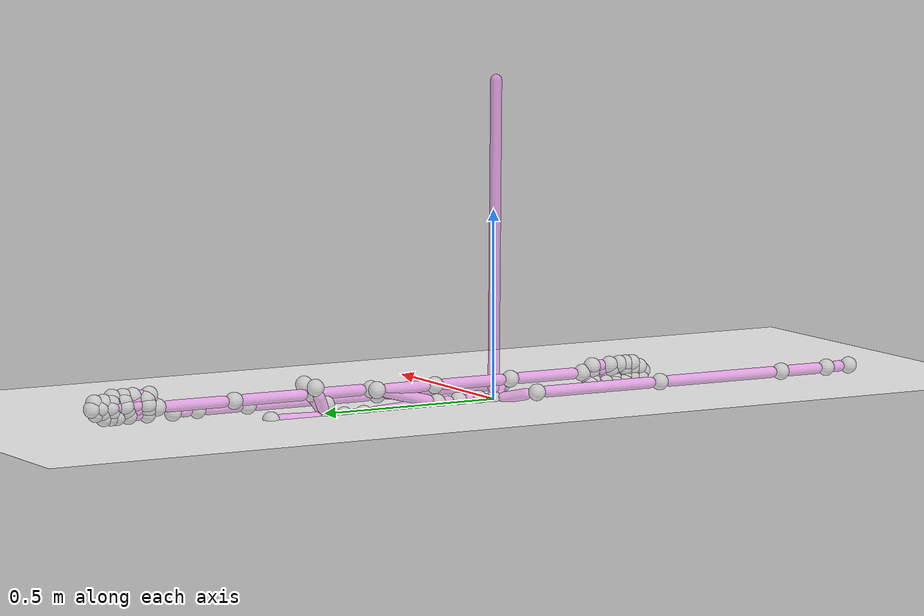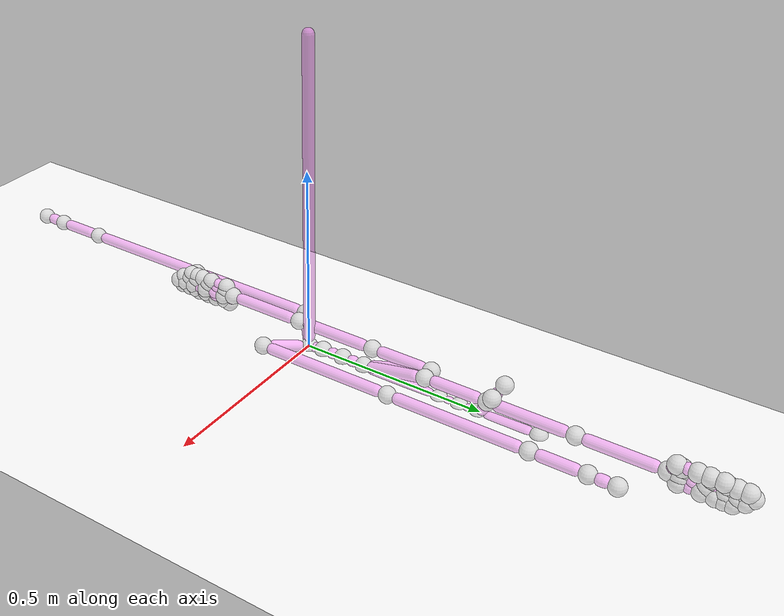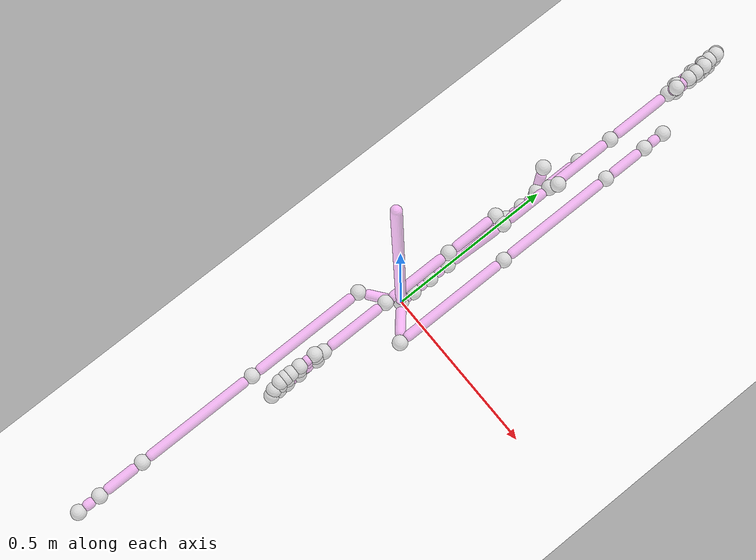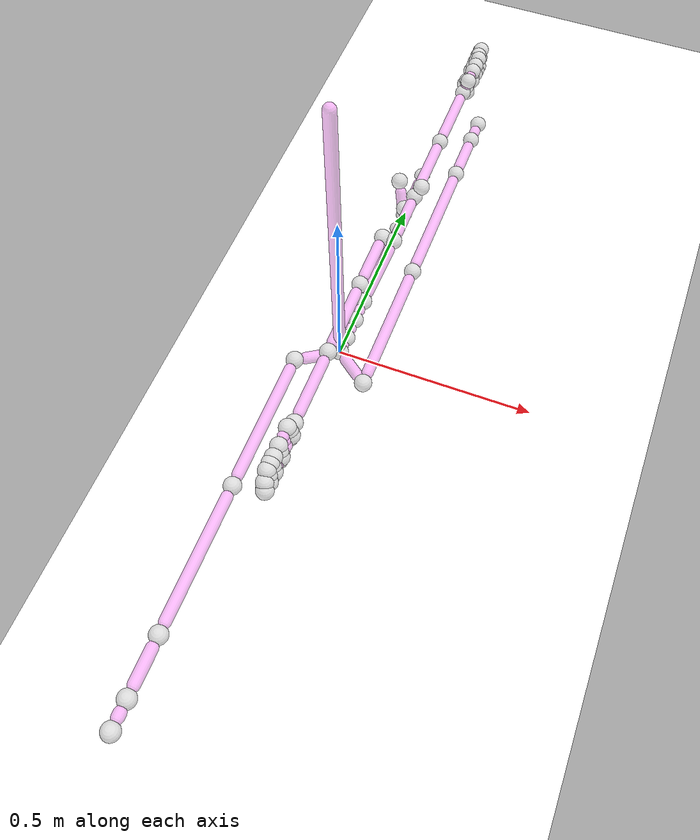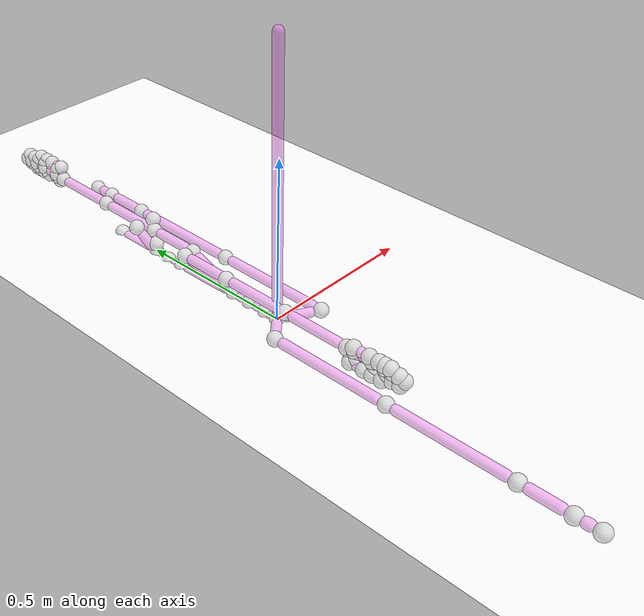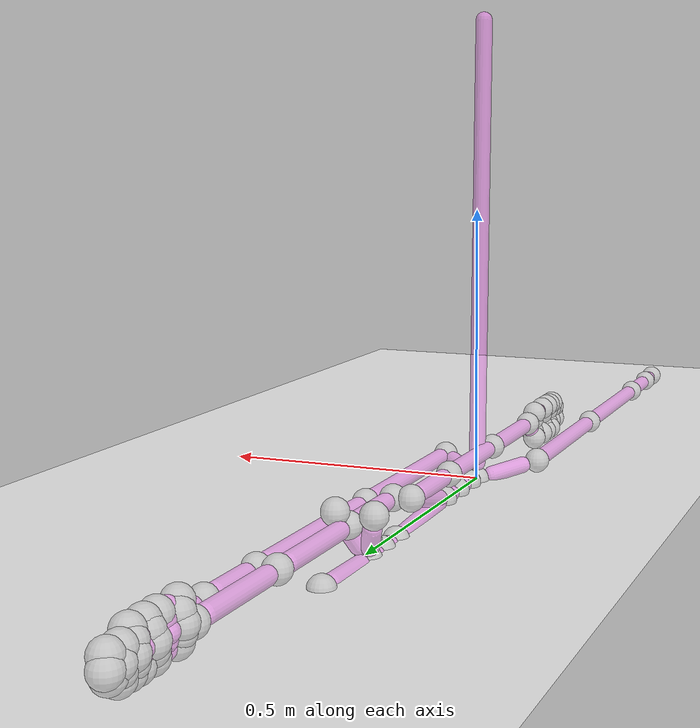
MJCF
<mujoco model="human_skeleton">
  <compiler angle="degree" coordinate="local"/>
  <option gravity="0 0 -9.81"/>
  <worldbody>
    <body name="Root" pos="0.000000 0.000000 0.000000">
      <joint type="ball" name="Root_joint"/>
      <geom type="sphere" size="0.0225" rgba="0.8 0.8 0.8 0.5"/>
      <geom type="capsule" size="0.015 0.4053841801929699" pos="-0.006304 -0.000614 0.435328"  quat="0.4999867697704854 0.0003526628811086165 -0.003620177256423024 0.0"  rgba="1.0 0.5 1.0 0.5"/>
      <body name="Hips" pos="0.000000 0.000000 0.000000">
        <joint name="floating_base_joint" type="free" limited="false" actuatorfrclimited="false"/>
        <geom type="sphere" size="0.0225" rgba="0.5 0.0 1.0 0.5"/>
        <geom type="capsule" size="0.015 1e-05" pos="0.000168 0.021950 0.002495"  quat="0.3729820767743832 -0.3329833474778381 0.0025417921869138357 0.0"  rgba="1.0 0.5 1.0 0.5"/>
        <body name="Spine1" pos="0.000335 0.043901 0.004990">
          <joint type="ball" name="Spine1_joint"/>
          <geom type="sphere" size="0.0225" rgba="0.8 0.8 0.8 0.5"/>
          <geom type="capsule" size="0.015 0.0003380950000000005" pos="0.000000 0.030328 -0.000000"  quat="0.3535533905932738 -0.35355339059327373 0.0 0.0"  rgba="1.0 0.5 1.0 0.5"/>
          <body name="Spine2" pos="0.000000 0.060656 -0.000000">
            <joint type="ball" name="Spine2_joint"/>
            <geom type="sphere" size="0.0225" rgba="0.8 0.8 0.8 0.5"/>
            <geom type="capsule" size="0.015 0.0018459450000015668" pos="0.000000 0.031836 0.000000"  quat="0.35355344612066 -0.3535533350658788 0.0 0.0"  rgba="1.0 0.5 1.0 0.5"/>
            <body name="Chest" pos="0.000000 0.063672 0.000000">
              <joint type="ball" name="Chest_joint"/>
              <geom type="sphere" size="0.0225" rgba="0.8 0.8 0.8 0.5"/>
              <geom type="capsule" size="0.015 0.0793071826628882" pos="-0.001166 0.109105 -0.006380"  quat="0.3430792537645486 -0.3637052672266247 -0.0038864158256608594 0.0"  rgba="1.0 0.5 1.0 0.5"/>
              <body name="Neck1" pos="-0.002332 0.218209 -0.012760">
                <joint type="ball" name="Neck1_joint"/>
                <geom type="sphere" size="0.0225" rgba="0.8 0.8 0.8 0.5"/>
                <geom type="capsule" size="0.015 1e-05" pos="0.000000 0.028113 -0.000000"  quat="0.35355335915255987 -0.3535534220339849 0.0 0.0"  rgba="1.0 0.5 1.0 0.5"/>
                <body name="Neck2" pos="0.000000 0.056225 -0.000000">
                  <joint type="ball" name="Neck2_joint"/>
                  <geom type="sphere" size="0.0225" rgba="0.8 0.8 0.8 0.5"/>
                  <geom type="capsule" size="0.015 1e-05" pos="0.000000 0.025986 -0.000000"  quat="0.3535532885506984 -0.3535534926358197 0.0 0.0"  rgba="1.0 0.5 1.0 0.5"/>
                  <body name="Head" pos="0.000000 0.051971 -0.000000">
                    <joint type="ball" name="Head_joint"/>
                    <geom type="sphere" size="0.0225" rgba="0.8 0.8 0.8 0.5"/>
                    <geom type="capsule" size="0.015 0.050270042127394575" pos="0.000039 0.080239 0.001823"  quat="0.357546212727924 -0.3495149156112949 0.00017184047125104278 0.0"  rgba="1.0 0.5 1.0 0.5"/>
                    <body name="HeadEnd" pos="0.000079 0.160479 0.003646">
                      <joint type="ball" name="HeadEnd_joint"/>
                      <geom type="sphere" size="0.0225" rgba="0.8 0.8 0.8 0.5"/>
                    </body>
                    <geom type="capsule" size="0.015 1e-05" pos="0.000035 0.000640 0.016273"  quat="0.49990304412940484 -0.00983181370612237 0.0005309514124868608 0.0"  rgba="1.0 0.5 1.0 0.5"/>
                    <body name="Jaw" pos="0.000069 0.001281 0.032545">
                      <joint type="ball" name="Jaw_joint"/>
                      <geom type="sphere" size="0.0225" rgba="0.8 0.8 0.8 0.5"/>
                    </body>
                    <geom type="capsule" size="0.015 0.021029722365282676" pos="0.015841 0.024296 0.041973"  quat="0.47732210931389063 -0.1247085992202639 0.0813103267774633 0.0"  rgba="1.0 0.5 1.0 0.5"/>
                    <body name="LeftEye" pos="0.031682 0.048592 0.083947">
                      <joint type="ball" name="LeftEye_joint"/>
                      <geom type="sphere" size="0.0225" rgba="0.8 0.8 0.8 0.5"/>
                    </body>
                    <geom type="capsule" size="0.015 0.021073140842283188" pos="-0.016152 0.024345 0.041879"  quat="0.47698921725157456 -0.12493876096904874 -0.08289507001775874 0.0"  rgba="1.0 0.5 1.0 0.5"/>
                    <body name="RightEye" pos="-0.032305 0.048689 0.083759">
                      <joint type="ball" name="RightEye_joint"/>
                      <geom type="sphere" size="0.0225" rgba="0.8 0.8 0.8 0.5"/>
                    </body>
                  </body>
                </body>
              </body>
              <geom type="capsule" size="0.015 0.066512417880271" pos="0.008189 0.093277 0.023348"  quat="0.3940082322367559 -0.30664757340715293 0.026921713414480637 0.0"  rgba="1.0 0.5 1.0 0.5"/>
              <body name="LeftShoulder" pos="0.016378 0.186553 0.046696">
                <joint type="ball" name="LeftShoulder_joint"/>
                <geom type="sphere" size="0.0225" rgba="0.8 0.8 0.8 0.5"/>
                <geom type="capsule" size="0.015 0.055020145000034416" pos="-0.000000 0.085010 -0.000000"  quat="0.3535533594011078 -0.35355342178529936 -3.11921672806198e-07 0.0"  rgba="1.0 0.5 1.0 0.5"/>
                <body name="LeftArm" pos="-0.000000 0.170020 -0.000000">
                  <joint type="ball" name="LeftArm_joint"/>
                  <geom type="sphere" size="0.0225" rgba="0.8 0.8 0.8 0.5"/>
                  <geom type="capsule" size="0.015 0.08304618500000188" pos="0.000000 0.113036 0.000000"  quat="0.35355339841274736 -0.35355338277379444 6.25557882679417e-08 0.0"  rgba="1.0 0.5 1.0 0.5"/>
                  <body name="LeftForeArm" pos="0.000000 0.226072 0.000000">
                    <joint type="ball" name="LeftForeArm_joint"/>
                    <geom type="sphere" size="0.0225" rgba="0.8 0.8 0.8 0.5"/>
                    <geom type="capsule" size="0.015 0.07912377000000011" pos="0.000000 0.109114 0.000000"  quat="0.35355339869384134 -0.353553382492706 0.0 0.0"  rgba="1.0 0.5 1.0 0.5"/>
                    <body name="LeftHand" pos="0.000000 0.218228 0.000000">
                      <joint type="ball" name="LeftHand_joint"/>
                      <geom type="sphere" size="0.0225" rgba="0.8 0.8 0.8 0.5"/>
                      <geom type="capsule" size="0.015 1e-05" pos="0.004033 0.009661 0.016027"  quat="0.4792212540129924 -0.13163204160848127 0.05495448411365577 0.0"  rgba="1.0 0.5 1.0 0.5"/>
                      <body name="LeftHandThumb1" pos="0.008066 0.019321 0.032055">
                        <joint type="ball" name="LeftHandThumb1_joint"/>
                        <geom type="sphere" size="0.0225" rgba="0.8 0.8 0.8 0.5"/>
                        <geom type="capsule" size="0.015 1e-05" pos="0.000000 0.023169 0.000000"  quat="0.3535533905932738 -0.35355339059319973 2.2889734577003085e-07 0.0"  rgba="1.0 0.5 1.0 0.5"/>
                        <body name="LeftHandThumb2" pos="0.000000 0.046338 0.000000">
                          <joint type="ball" name="LeftHandThumb2_joint"/>
                          <geom type="sphere" size="0.0225" rgba="0.8 0.8 0.8 0.5"/>
                          <geom type="capsule" size="0.015 1e-05" pos="0.000000 0.013484 0.000000"  quat="0.35355365279008494 -0.3535531283958793 5.243934278917277e-07 0.0"  rgba="1.0 0.5 1.0 0.5"/>
                          <body name="LeftHandThumb3" pos="0.000000 0.026969 0.000000">
                            <joint type="ball" name="LeftHandThumb3_joint"/>
                            <geom type="sphere" size="0.0225" rgba="0.8 0.8 0.8 0.5"/>
                            <geom type="capsule" size="0.015 1e-05" pos="0.000000 0.015523 -0.000000"  quat="0.3535529350620424 -0.3535538461239182 0.0 0.0"  rgba="1.0 0.5 1.0 0.5"/>
                            <body name="LeftHandThumbEnd" pos="0.000000 0.031045 -0.000000">
                              <joint type="ball" name="LeftHandThumbEnd_joint"/>
                              <geom type="sphere" size="0.0225" rgba="0.8 0.8 0.8 0.5"/>
                            </body>
                          </body>
                        </body>
                      </body>
                      <geom type="capsule" size="0.015 1e-05" pos="0.000498 0.014946 0.011280"  quat="0.447521830247635 -0.22286547055889092 0.007429231748377347 0.0"  rgba="1.0 0.5 1.0 0.5"/>
                      <body name="LeftHandIndex1" pos="0.000996 0.029892 0.022560">
                        <joint type="ball" name="LeftHandIndex1_joint"/>
                        <geom type="sphere" size="0.0225" rgba="0.8 0.8 0.8 0.5"/>
                        <geom type="capsule" size="0.015 0.0022948150000263287" pos="-0.000000 0.032285 0.000000"  quat="0.35355344534863836 -0.3535533358376293 -4.380428828074491e-07 0.0"  rgba="1.0 0.5 1.0 0.5"/>
                        <body name="LeftHandIndex2" pos="-0.000000 0.064570 0.000000">
                          <joint type="ball" name="LeftHandIndex2_joint"/>
                          <geom type="sphere" size="0.0225" rgba="0.8 0.8 0.8 0.5"/>
                          <geom type="capsule" size="0.015 1e-05" pos="0.000000 0.017473 -0.000000"  quat="0.3535532894240832 -0.35355349176243545 0.0 0.0"  rgba="1.0 0.5 1.0 0.5"/>
                          <body name="LeftHandIndex3" pos="0.000000 0.034947 -0.000000">
                            <joint type="ball" name="LeftHandIndex3_joint"/>
                            <geom type="sphere" size="0.0225" rgba="0.8 0.8 0.8 0.5"/>
                            <geom type="capsule" size="0.015 1e-05" pos="-0.000000 0.010751 0.000000"  quat="0.35355371946347575 -0.353553061722154 -6.57740098120009e-07 0.0"  rgba="1.0 0.5 1.0 0.5"/>
                            <body name="LeftHandIndex4" pos="-0.000000 0.021501 0.000000">
                              <joint type="ball" name="LeftHandIndex4_joint"/>
                              <geom type="sphere" size="0.0225" rgba="0.8 0.8 0.8 0.5"/>
                              <geom type="capsule" size="0.015 1e-05" pos="0.000000 0.012791 -0.000000"  quat="0.35355332149098595 -0.3535534596955481 0.0 0.0"  rgba="1.0 0.5 1.0 0.5"/>
                              <body name="LeftHandIndexEnd" pos="0.000000 0.025582 -0.000000">
                                <joint type="ball" name="LeftHandIndexEnd_joint"/>
                                <geom type="sphere" size="0.0225" rgba="0.8 0.8 0.8 0.5"/>
                              </body>
                            </body>
                          </body>
                        </body>
                      </body>
                      <geom type="capsule" size="0.015 1e-05" pos="-0.002087 0.014694 0.004382"  quat="0.40049882843327994 -0.29635804926747183 -0.04210219778050777 0.0"  rgba="1.0 0.5 1.0 0.5"/>
                      <body name="LeftHandMiddle1" pos="-0.004175 0.029387 0.008765">
                        <joint type="ball" name="LeftHandMiddle1_joint"/>
                        <geom type="sphere" size="0.0225" rgba="0.8 0.8 0.8 0.5"/>
                        <geom type="capsule" size="0.015 0.001325670000025554" pos="-0.000000 0.031316 0.000000"  quat="0.3535533905932738 -0.3535533905929853 -4.5159933106075683e-07 0.0"  rgba="1.0 0.5 1.0 0.5"/>
                        <body name="LeftHandMiddle2" pos="-0.000000 0.062631 0.000000">
                          <joint type="ball" name="LeftHandMiddle2_joint"/>
                          <geom type="sphere" size="0.0225" rgba="0.8 0.8 0.8 0.5"/>
                          <geom type="capsule" size="0.015 1e-05" pos="-0.000000 0.020911 -0.000000"  quat="0.35355334832515006 -0.3535534328612307 -3.3814501011291065e-07 0.0"  rgba="1.0 0.5 1.0 0.5"/>
                          <body name="LeftHandMiddle3" pos="-0.000000 0.041823 -0.000000">
                            <joint type="ball" name="LeftHandMiddle3_joint"/>
                            <geom type="sphere" size="0.0225" rgba="0.8 0.8 0.8 0.5"/>
                            <geom type="capsule" size="0.015 1e-05" pos="0.000000 0.014242 -0.000000"  quat="0.35355326647027024 -0.3535535147162337 0.0 0.0"  rgba="1.0 0.5 1.0 0.5"/>
                            <body name="LeftHandMiddle4" pos="0.000000 0.028484 -0.000000">
                              <joint type="ball" name="LeftHandMiddle4_joint"/>
                              <geom type="sphere" size="0.0225" rgba="0.8 0.8 0.8 0.5"/>
                              <geom type="capsule" size="0.015 1e-05" pos="0.000000 0.011370 0.000000"  quat="0.35355354606638284 -0.3535532351195494 6.21892299757172e-07 0.0"  rgba="1.0 0.5 1.0 0.5"/>
                              <body name="LeftHandMiddleEnd" pos="0.000000 0.022740 0.000000">
                                <joint type="ball" name="LeftHandMiddleEnd_joint"/>
                                <geom type="sphere" size="0.0225" rgba="0.8 0.8 0.8 0.5"/>
                              </body>
                            </body>
                          </body>
                        </body>
                      </body>
                      <geom type="capsule" size="0.015 1e-05" pos="0.000672 0.013218 -0.001976"  quat="0.32640152360252656 -0.37827548773385566 0.0192276043661949 0.0"  rgba="1.0 0.5 1.0 0.5"/>
                      <body name="LeftHandRing1" pos="0.001344 0.026435 -0.003953">
                        <joint type="ball" name="LeftHandRing1_joint"/>
                        <geom type="sphere" size="0.0225" rgba="0.8 0.8 0.8 0.5"/>
                        <geom type="capsule" size="0.015 1e-05" pos="0.000000 0.029870 0.000000"  quat="0.3535534497743581 -0.35355333141217954 0.0 0.0"  rgba="1.0 0.5 1.0 0.5"/>
                        <body name="LeftHandRing2" pos="0.000000 0.059741 0.000000">
                          <joint type="ball" name="LeftHandRing2_joint"/>
                          <geom type="sphere" size="0.0225" rgba="0.8 0.8 0.8 0.5"/>
                          <geom type="capsule" size="0.015 1e-05" pos="0.000000 0.020779 0.000000"  quat="0.3535533905932738 -0.35355339059327373 0.0 0.0"  rgba="1.0 0.5 1.0 0.5"/>
                          <body name="LeftHandRing3" pos="0.000000 0.041559 0.000000">
                            <joint type="ball" name="LeftHandRing3_joint"/>
                            <geom type="sphere" size="0.0225" rgba="0.8 0.8 0.8 0.5"/>
                            <geom type="capsule" size="0.015 1e-05" pos="-0.000000 0.012537 0.000000"  quat="0.3535533905932738 -0.3535533905914741 -1.1280678671776212e-06 0.0"  rgba="1.0 0.5 1.0 0.5"/>
                            <body name="LeftHandRing4" pos="-0.000000 0.025073 0.000000">
                              <joint type="ball" name="LeftHandRing4_joint"/>
                              <geom type="sphere" size="0.0225" rgba="0.8 0.8 0.8 0.5"/>
                              <geom type="capsule" size="0.015 1e-05" pos="-0.000000 0.009328 -0.000000"  quat="0.35355310633994474 -0.3535536748455617 -7.580091823010003e-07 0.0"  rgba="1.0 0.5 1.0 0.5"/>
                              <body name="LeftHandRingEnd" pos="-0.000000 0.018657 -0.000000">
                                <joint type="ball" name="LeftHandRingEnd_joint"/>
                                <geom type="sphere" size="0.0225" rgba="0.8 0.8 0.8 0.5"/>
                              </body>
                            </body>
                          </body>
                        </body>
                      </body>
                      <geom type="capsule" size="0.015 1e-05" pos="0.002860 0.013000 -0.008327"  quat="0.2422967331319915 -0.42715588923006975 0.09396882147623681 0.0"  rgba="1.0 0.5 1.0 0.5"/>
                      <body name="LeftHandPinky1" pos="0.005720 0.026000 -0.016653">
                        <joint type="ball" name="LeftHandPinky1_joint"/>
                        <geom type="sphere" size="0.0225" rgba="0.8 0.8 0.8 0.5"/>
                        <geom type="capsule" size="0.015 1e-05" pos="-0.000000 0.026343 -0.000000"  quat="0.3535533570404956 -0.3535534241456411 -5.368444755064953e-07 0.0"  rgba="1.0 0.5 1.0 0.5"/>
                        <body name="LeftHandPinky2" pos="-0.000000 0.052686 -0.000000">
                          <joint type="ball" name="LeftHandPinky2_joint"/>
                          <geom type="sphere" size="0.0225" rgba="0.8 0.8 0.8 0.5"/>
                          <geom type="capsule" size="0.015 1e-05" pos="-0.000000 0.015569 0.000000"  quat="0.35355344736389704 -0.35355333382043536 -1.2489536102352146e-06 0.0"  rgba="1.0 0.5 1.0 0.5"/>
                          <body name="LeftHandPinky3" pos="-0.000000 0.031139 0.000000">
                            <joint type="ball" name="LeftHandPinky3_joint"/>
                            <geom type="sphere" size="0.0225" rgba="0.8 0.8 0.8 0.5"/>
                            <geom type="capsule" size="0.015 1e-05" pos="-0.000000 0.008761 0.000000"  quat="0.3535533905932738 -0.3535533905895886 -1.6142525448413696e-06 0.0"  rgba="1.0 0.5 1.0 0.5"/>
                            <body name="LeftHandPinky4" pos="-0.000000 0.017522 0.000000">
                              <joint type="ball" name="LeftHandPinky4_joint"/>
                              <geom type="sphere" size="0.0225" rgba="0.8 0.8 0.8 0.5"/>
                              <geom type="capsule" size="0.015 1e-05" pos="-0.000000 0.009813 -0.000000"  quat="0.3535532104535041 -0.3535535707322174 -7.205592623329282e-07 0.0"  rgba="1.0 0.5 1.0 0.5"/>
                              <body name="LeftHandPinkyEnd" pos="-0.000000 0.019627 -0.000000">
                                <joint type="ball" name="LeftHandPinkyEnd_joint"/>
                                <geom type="sphere" size="0.0225" rgba="0.8 0.8 0.8 0.5"/>
                              </body>
                            </body>
                          </body>
                        </body>
                      </body>
                    </body>
                  </body>
                </body>
              </body>
              <geom type="capsule" size="0.015 0.06638667410424852" pos="-0.007756 0.092962 0.024216"  quat="0.3954841052590697 -0.30486935986931285 -0.025436114096074373 0.0"  rgba="1.0 0.5 1.0 0.5"/>
              <body name="RightShoulder" pos="-0.015512 0.185924 0.048431">
                <joint type="ball" name="RightShoulder_joint"/>
                <geom type="sphere" size="0.0225" rgba="0.8 0.8 0.8 0.5"/>
                <geom type="capsule" size="0.015 0.05536481500001187" pos="0.000000 -0.085355 0.000000"  quat="0.3535533905932738 0.3535533905932246 1.863972474979309e-07 0.0"  rgba="1.0 0.5 1.0 0.5"/>
                <body name="RightArm" pos="0.000000 -0.170710 0.000000">
                  <joint type="ball" name="RightArm_joint"/>
                  <geom type="sphere" size="0.0225" rgba="0.8 0.8 0.8 0.5"/>
                  <geom type="capsule" size="0.015 0.08313769000000222" pos="-0.000000 -0.113128 0.000000"  quat="0.3535534218458677 0.3535533593406758 -3.125259247675577e-08 0.0"  rgba="1.0 0.5 1.0 0.5"/>
                  <body name="RightForeArm" pos="-0.000000 -0.226255 0.000000">
                    <joint type="ball" name="RightForeArm_joint"/>
                    <geom type="sphere" size="0.0225" rgba="0.8 0.8 0.8 0.5"/>
                    <geom type="capsule" size="0.015 0.07915896000000229" pos="-0.000000 -0.109149 -0.000000"  quat="0.35355335820144823 0.35355342298509485 -3.239182700275796e-08 0.0"  rgba="1.0 0.5 1.0 0.5"/>
                    <body name="RightHand" pos="-0.000000 -0.218298 -0.000000">
                      <joint type="ball" name="RightHand_joint"/>
                      <geom type="sphere" size="0.0225" rgba="0.8 0.8 0.8 0.5"/>
                      <geom type="capsule" size="0.015 1e-05" pos="-0.004034 -0.009659 -0.016029"  quat="0.14261911499032742 0.4422120754808002 -0.18468423955047925 0.0"  rgba="1.0 0.5 1.0 0.5"/>
                      <body name="RightHandThumb1" pos="-0.008068 -0.019318 -0.032058">
                        <joint type="ball" name="RightHandThumb1_joint"/>
                        <geom type="sphere" size="0.0225" rgba="0.8 0.8 0.8 0.5"/>
                        <geom type="capsule" size="0.015 1e-05" pos="0.000000 -0.023170 -0.000000"  quat="0.35355323800502086 0.35355354318116444 4.577648573746462e-07 0.0"  rgba="1.0 0.5 1.0 0.5"/>
                        <body name="RightHandThumb2" pos="0.000000 -0.046341 -0.000000">
                          <joint type="ball" name="RightHandThumb2_joint"/>
                          <geom type="sphere" size="0.0225" rgba="0.8 0.8 0.8 0.5"/>
                          <geom type="capsule" size="0.015 1e-05" pos="0.000000 -0.013484 -0.000000"  quat="0.3535528661918735 0.35355391499302125 7.866026838150783e-07 0.0"  rgba="1.0 0.5 1.0 0.5"/>
                          <body name="RightHandThumb3" pos="0.000000 -0.026968 -0.000000">
                            <joint type="ball" name="RightHandThumb3_joint"/>
                            <geom type="sphere" size="0.0225" rgba="0.8 0.8 0.8 0.5"/>
                            <geom type="capsule" size="0.015 1e-05" pos="-0.000000 -0.015525 -0.000000"  quat="0.3535531628659484 0.3535536183202874 -3.4159109806601567e-07 0.0"  rgba="1.0 0.5 1.0 0.5"/>
                            <body name="RightHandThumbEnd" pos="-0.000000 -0.031051 -0.000000">
                              <joint type="ball" name="RightHandThumbEnd_joint"/>
                              <geom type="sphere" size="0.0225" rgba="0.8 0.8 0.8 0.5"/>
                            </body>
                          </body>
                        </body>
                      </body>
                      <geom type="capsule" size="0.015 1e-05" pos="-0.000501 -0.014948 -0.011279"  quat="0.22302010348650242 0.4472554175889212 -0.014987490724918033 0.0"  rgba="1.0 0.5 1.0 0.5"/>
                      <body name="RightHandIndex1" pos="-0.001002 -0.029896 -0.022557">
                        <joint type="ball" name="RightHandIndex1_joint"/>
                        <geom type="sphere" size="0.0225" rgba="0.8 0.8 0.8 0.5"/>
                        <geom type="capsule" size="0.015 0.0022937050000034873" pos="0.000000 -0.032284 -0.000000"  quat="0.353553308457387 0.35355347272914145 0.0 0.0"  rgba="1.0 0.5 1.0 0.5"/>
                        <body name="RightHandIndex2" pos="0.000000 -0.064567 -0.000000">
                          <joint type="ball" name="RightHandIndex2_joint"/>
                          <geom type="sphere" size="0.0225" rgba="0.8 0.8 0.8 0.5"/>
                          <geom type="capsule" size="0.015 1e-05" pos="0.000000 -0.017469 0.000000"  quat="0.3535534411895131 0.35355333999702726 0.0 0.0"  rgba="1.0 0.5 1.0 0.5"/>
                          <body name="RightHandIndex3" pos="0.000000 -0.034939 0.000000">
                            <joint type="ball" name="RightHandIndex3_joint"/>
                            <geom type="sphere" size="0.0225" rgba="0.8 0.8 0.8 0.5"/>
                            <geom type="capsule" size="0.015 1e-05" pos="0.000000 -0.010748 -0.000000"  quat="0.3535533905932738 0.35355339059327373 0.0 0.0"  rgba="1.0 0.5 1.0 0.5"/>
                            <body name="RightHandIndex4" pos="0.000000 -0.021495 -0.000000">
                              <joint type="ball" name="RightHandIndex4_joint"/>
                              <geom type="sphere" size="0.0225" rgba="0.8 0.8 0.8 0.5"/>
                              <geom type="capsule" size="0.015 1e-05" pos="0.000000 -0.012791 0.000000"  quat="0.35355359790435126 0.3535531832816426 5.528293777682541e-07 0.0"  rgba="1.0 0.5 1.0 0.5"/>
                              <body name="RightHandIndexEnd" pos="0.000000 -0.025581 0.000000">
                                <joint type="ball" name="RightHandIndexEnd_joint"/>
                                <geom type="sphere" size="0.0225" rgba="0.8 0.8 0.8 0.5"/>
                              </body>
                            </body>
                          </body>
                        </body>
                      </body>
                      <geom type="capsule" size="0.015 1e-05" pos="0.002088 -0.014694 -0.004382"  quat="0.2993451479159816 0.3965057507121433 0.05635310170131536 0.0"  rgba="1.0 0.5 1.0 0.5"/>
                      <body name="RightHandMiddle1" pos="0.004177 -0.029388 -0.008763">
                        <joint type="ball" name="RightHandMiddle1_joint"/>
                        <geom type="sphere" size="0.0225" rgba="0.8 0.8 0.8 0.5"/>
                        <geom type="capsule" size="0.015 0.0013275600000015983" pos="0.000000 -0.031318 -0.000000"  quat="0.3535533341467596 0.3535534470397789 0.0 0.0"  rgba="1.0 0.5 1.0 0.5"/>
                        <body name="RightHandMiddle2" pos="0.000000 -0.062635 -0.000000">
                          <joint type="ball" name="RightHandMiddle2_joint"/>
                          <geom type="sphere" size="0.0225" rgba="0.8 0.8 0.8 0.5"/>
                          <geom type="capsule" size="0.015 1e-05" pos="-0.000000 -0.020905 0.000000"  quat="0.3535534328736956 0.3535533483126851 -3.38243354784247e-07 0.0"  rgba="1.0 0.5 1.0 0.5"/>
                          <body name="RightHandMiddle3" pos="-0.000000 -0.041811 0.000000">
                            <joint type="ball" name="RightHandMiddle3_joint"/>
                            <geom type="sphere" size="0.0225" rgba="0.8 0.8 0.8 0.5"/>
                            <geom type="capsule" size="0.015 1e-05" pos="-0.000000 -0.014237 0.000000"  quat="0.35355345267771054 0.3535533285084772 -4.966754504907562e-07 0.0"  rgba="1.0 0.5 1.0 0.5"/>
                            <body name="RightHandMiddle4" pos="-0.000000 -0.028474 0.000000">
                              <joint type="ball" name="RightHandMiddle4_joint"/>
                              <geom type="sphere" size="0.0225" rgba="0.8 0.8 0.8 0.5"/>
                              <geom type="capsule" size="0.015 1e-05" pos="0.000000 -0.011372 -0.000000"  quat="0.35355331287050157 0.3535534683154822 6.217822461243098e-07 0.0"  rgba="1.0 0.5 1.0 0.5"/>
                              <body name="RightHandMiddleEnd" pos="0.000000 -0.022745 -0.000000">
                                <joint type="ball" name="RightHandMiddleEnd_joint"/>
                                <geom type="sphere" size="0.0225" rgba="0.8 0.8 0.8 0.5"/>
                              </body>
                            </body>
                          </body>
                        </body>
                      </body>
                      <geom type="capsule" size="0.015 1e-05" pos="-0.000669 -0.013217 0.001976"  quat="0.37876394038126493 0.3259840028286829 -0.016501738291672 0.0"  rgba="1.0 0.5 1.0 0.5"/>
                      <body name="RightHandRing1" pos="-0.001338 -0.026434 0.003953">
                        <joint type="ball" name="RightHandRing1_joint"/>
                        <geom type="sphere" size="0.0225" rgba="0.8 0.8 0.8 0.5"/>
                        <geom type="capsule" size="0.015 1e-05" pos="-0.000000 -0.029872 -0.000000"  quat="0.35355330182515016 0.35355347936129583 -2.36715025907534e-07 0.0"  rgba="1.0 0.5 1.0 0.5"/>
                        <body name="RightHandRing2" pos="-0.000000 -0.059743 -0.000000">
                          <joint type="ball" name="RightHandRing2_joint"/>
                          <geom type="sphere" size="0.0225" rgba="0.8 0.8 0.8 0.5"/>
                          <geom type="capsule" size="0.015 1e-05" pos="-0.000000 -0.020775 0.000000"  quat="0.3535534331384267 0.3535533480479519 -3.403612030871945e-07 0.0"  rgba="1.0 0.5 1.0 0.5"/>
                          <body name="RightHandRing3" pos="-0.000000 -0.041550 0.000000">
                            <joint type="ball" name="RightHandRing3_joint"/>
                            <geom type="sphere" size="0.0225" rgba="0.8 0.8 0.8 0.5"/>
                            <geom type="capsule" size="0.015 1e-05" pos="-0.000000 -0.012531 0.000000"  quat="0.3535534611263707 0.3535533200597125 -5.642647192383854e-07 0.0"  rgba="1.0 0.5 1.0 0.5"/>
                            <body name="RightHandRing4" pos="-0.000000 -0.025063 0.000000">
                              <joint type="ball" name="RightHandRing4_joint"/>
                              <geom type="sphere" size="0.0225" rgba="0.8 0.8 0.8 0.5"/>
                              <geom type="capsule" size="0.015 1e-05" pos="-0.000000 -0.009332 0.000000"  quat="0.35355348531316033 0.3535532958725498 -7.577589915342034e-07 0.0"  rgba="1.0 0.5 1.0 0.5"/>
                              <body name="RightHandRingEnd" pos="-0.000000 -0.018663 0.000000">
                                <joint type="ball" name="RightHandRingEnd_joint"/>
                                <geom type="sphere" size="0.0225" rgba="0.8 0.8 0.8 0.5"/>
                              </body>
                            </body>
                          </body>
                        </body>
                      </body>
                      <geom type="capsule" size="0.015 1e-05" pos="-0.002860 -0.012998 0.008326"  quat="0.4373736450218596 0.23662983751429417 -0.052063563441730305 0.0"  rgba="1.0 0.5 1.0 0.5"/>
                      <body name="RightHandPinky1" pos="-0.005720 -0.025996 0.016652">
                        <joint type="ball" name="RightHandPinky1_joint"/>
                        <geom type="sphere" size="0.0225" rgba="0.8 0.8 0.8 0.5"/>
                        <geom type="capsule" size="0.015 1e-05" pos="0.000000 -0.026343 -0.000000"  quat="0.3535533905932738 0.35355339059327373 0.0 0.0"  rgba="1.0 0.5 1.0 0.5"/>
                        <body name="RightHandPinky2" pos="0.000000 -0.052686 -0.000000">
                          <joint type="ball" name="RightHandPinky2_joint"/>
                          <geom type="sphere" size="0.0225" rgba="0.8 0.8 0.8 0.5"/>
                          <geom type="capsule" size="0.015 1e-05" pos="0.000000 -0.015566 0.000000"  quat="0.3535534473780116 0.3535533338085268 0.0 0.0"  rgba="1.0 0.5 1.0 0.5"/>
                          <body name="RightHandPinky3" pos="0.000000 -0.031131 0.000000">
                            <joint type="ball" name="RightHandPinky3_joint"/>
                            <geom type="sphere" size="0.0225" rgba="0.8 0.8 0.8 0.5"/>
                            <geom type="capsule" size="0.015 1e-05" pos="-0.000000 -0.008760 0.000000"  quat="0.3535536932945198 0.35355308789084705 -8.07202977391658e-07 0.0"  rgba="1.0 0.5 1.0 0.5"/>
                            <body name="RightHandPinky4" pos="-0.000000 -0.017520 0.000000">
                              <joint type="ball" name="RightHandPinky4_joint"/>
                              <geom type="sphere" size="0.0225" rgba="0.8 0.8 0.8 0.5"/>
                              <geom type="capsule" size="0.015 1e-05" pos="0.000000 -0.009817 -0.000000"  quat="0.35355321051369387 0.3535535706720282 7.20318503007721e-07 0.0"  rgba="1.0 0.5 1.0 0.5"/>
                              <body name="RightHandPinkyEnd" pos="0.000000 -0.019633 -0.000000">
                                <joint type="ball" name="RightHandPinkyEnd_joint"/>
                                <geom type="sphere" size="0.0225" rgba="0.8 0.8 0.8 0.5"/>
                              </body>
                            </body>
                          </body>
                        </body>
                      </body>
                    </body>
                  </body>
                </body>
              </body>
            </body>
          </body>
        </body>
        <geom type="capsule" size="0.015 0.03188530429929113" pos="0.046190 -0.039568 0.011373"  quat="0.38467569725452405 0.20780091121779537 0.24257656366351568 0.0"  rgba="1.0 0.5 1.0 0.5"/>
        <body name="LeftLeg" pos="0.092381 -0.079137 0.022746">
          <joint type="ball" name="LeftLeg_joint"/>
          <geom type="sphere" size="0.0225" rgba="0.8 0.8 0.8 0.5"/>
          <geom type="capsule" size="0.015 0.15744799000000087" pos="0.000000 0.187438 0.000000"  quat="0.35355340474008773 -0.35355337644645873 1.8862418256110124e-08 0.0"  rgba="1.0 0.5 1.0 0.5"/>
          <body name="LeftShin" pos="0.000000 0.374876 0.000000">
            <joint type="ball" name="LeftShin_joint"/>
            <geom type="sphere" size="0.0225" rgba="0.8 0.8 0.8 0.5"/>
            <geom type="capsule" size="0.015 0.15906161000000035" pos="-0.000000 0.189052 0.000000"  quat="0.35355339994398455 -0.35355338124256264 -9.350710666853423e-09 0.0"  rgba="1.0 0.5 1.0 0.5"/>
            <body name="LeftFoot" pos="-0.000000 0.378103 0.000000">
              <joint type="ball" name="LeftFoot_joint"/>
              <geom type="sphere" size="0.0225" rgba="0.8 0.8 0.8 0.5"/>
              <geom type="capsule" size="0.015 0.04210079500000017" pos="0.000000 0.072091 0.000000"  quat="0.35355339059327373 -0.35355339059327295 2.4521396288754546e-08 0.0"  rgba="1.0 0.5 1.0 0.5"/>
              <body name="LeftToeBase" pos="0.000000 0.144182 0.000000">
                <joint type="ball" name="LeftToeBase_joint"/>
                <geom type="sphere" size="0.0225" rgba="0.8 0.8 0.8 0.5"/>
                <geom type="capsule" size="0.015 0.005190093058729254" pos="0.000000 0.035175 -0.000614"  quat="0.3504546437210051 -0.3566252132062222 0.0 0.0"  rgba="1.0 0.5 1.0 0.5"/>
                <body name="LeftToeEnd" pos="0.000000 0.070349 -0.001228">
                  <joint type="ball" name="LeftToeEnd_joint"/>
                  <geom type="sphere" size="0.0225" rgba="0.8 0.8 0.8 0.5"/>
                </body>
              </body>
            </body>
          </body>
        </body>
        <geom type="capsule" size="0.015 0.03184556269626808" pos="-0.046047 -0.039304 0.012590"  quat="0.3878795752231185 0.2048395702629292 -0.2399795524190169 0.0"  rgba="1.0 0.5 1.0 0.5"/>
        <body name="RightLeg" pos="-0.092094 -0.078608 0.025180">
          <joint type="ball" name="RightLeg_joint"/>
          <geom type="sphere" size="0.0225" rgba="0.8 0.8 0.8 0.5"/>
          <geom type="capsule" size="0.015 0.15742749000000014" pos="0.000000 -0.187417 0.000000"  quat="0.35355339530939434 0.35355338587715307 9.432240979141093e-09 0.0"  rgba="1.0 0.5 1.0 0.5"/>
          <body name="RightShin" pos="0.000000 -0.374835 0.000000">
            <joint type="ball" name="RightShin_joint"/>
            <geom type="sphere" size="0.0225" rgba="0.8 0.8 0.8 0.5"/>
            <geom type="capsule" size="0.015 0.15906033000000025" pos="-0.000000 -0.189050 -0.000000"  quat="0.35355339059327373 0.3535533905932733 -1.8701548449731527e-08 0.0"  rgba="1.0 0.5 1.0 0.5"/>
            <body name="RightFoot" pos="-0.000000 -0.378101 -0.000000">
              <joint type="ball" name="RightFoot_joint"/>
              <geom type="sphere" size="0.0225" rgba="0.8 0.8 0.8 0.5"/>
              <geom type="capsule" size="0.015 0.04208877500000089" pos="0.000000 -0.072079 0.000000"  quat="0.35355340285601633 0.3535533783305274 4.9050969349926854e-08 0.0"  rgba="1.0 0.5 1.0 0.5"/>
              <body name="RightToeBase" pos="0.000000 -0.144158 0.000000">
                <joint type="ball" name="RightToeBase_joint"/>
                <geom type="sphere" size="0.0225" rgba="0.8 0.8 0.8 0.5"/>
                <geom type="capsule" size="0.015 0.005199594491481784" pos="-0.000000 -0.035184 0.000614"  quat="0.35662520911118906 0.3504546478881265 -9.960558980126372e-08 0.0"  rgba="1.0 0.5 1.0 0.5"/>
                <body name="RightToeEnd" pos="-0.000000 -0.070368 0.001228">
                  <joint type="ball" name="RightToeEnd_joint"/>
                  <geom type="sphere" size="0.0225" rgba="0.8 0.8 0.8 0.5"/>
                </body>
              </body>
            </body>
          </body>
        </body>
      </body>
    </body>
  </worldbody>

    <!-- setup scene -->
  <statistic center="1.0 0.7 1.0" extent="0.8"/>
    <visual>
        <headlight diffuse="0.6 0.6 0.6" ambient="0.1 0.1 0.1" specular="0.9 0.9 0.9"/>
        <rgba haze="0.15 0.25 0.35 1"/>
        <global azimuth="-140" elevation="-20" offwidth="2080" offheight="1170"/>
    </visual>
    <asset>
        <texture type="skybox" builtin="gradient" rgb1="1 1 1" rgb2="1 1 1" width="800" height="800"/>
    <texture type="2d" name="groundplane" builtin="checker" mark="edge" rgb1="1 1 1" rgb2="1 1 1" markrgb="0 0 0"
      width="300" height="300"/>
    <material name="groundplane" texture="groundplane" texuniform="true" texrepeat="5 5" reflectance="0"/>
        <texture type="skybox" builtin="gradient" rgb1=".4 .5 .6" rgb2="0 0 0" width="100" height="100"/>
        <texture builtin="flat" height="1278" mark="cross" markrgb="1 1 1" name="texgeom" random="0.01" rgb1="0.8 0.6 0.4" rgb2="0.8 0.6 0.4" type="cube" width="127"/>
        <texture name="texplane" builtin="checker" height="512" width="512" rgb1=".2 .3 .4" rgb2=".1 .15 .2" type="2d" />
        <material name="MatPlane" reflectance="0.5" shininess="0.01" specular="0.1" texrepeat="1 1" texture="texplane" texuniform="true" />
        <material name="geom" texture="texgeom" texuniform="true"/>
    </asset>
    <worldbody>
        <geom name="floor" size="0 0 0.01" type="plane" material="groundplane" contype="1" conaffinity="0" priority="1"
      friction="0.6" condim="3"/>

          <light diffuse=".5 .5 .5" pos="-3 -3 5" dir="3 3 -5" castshadow="true"/>

    </worldbody>

</mujoco>
